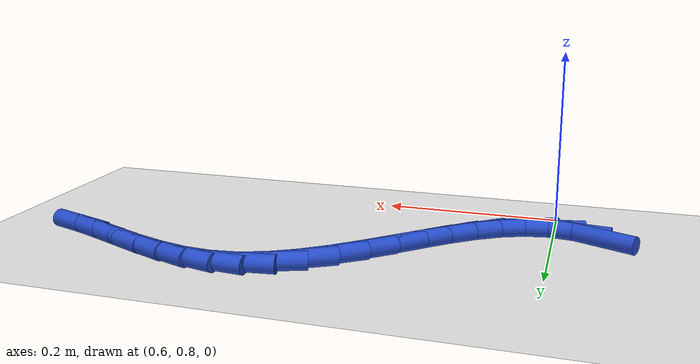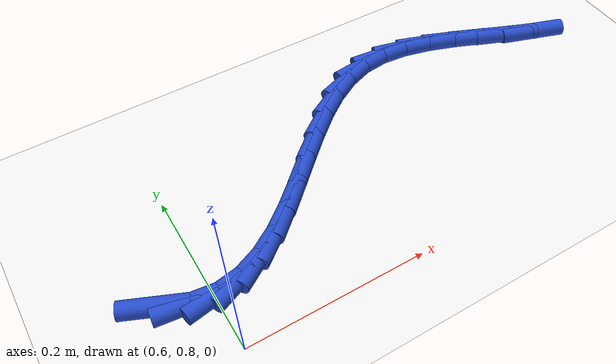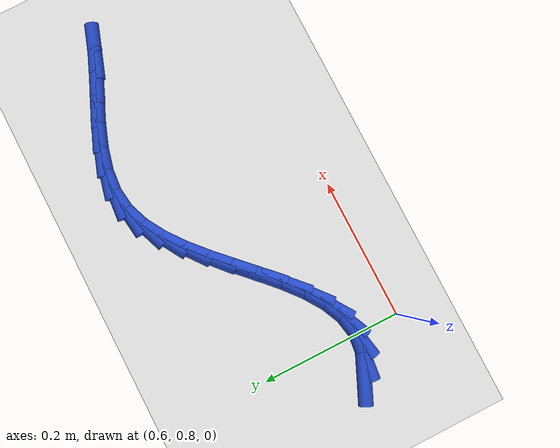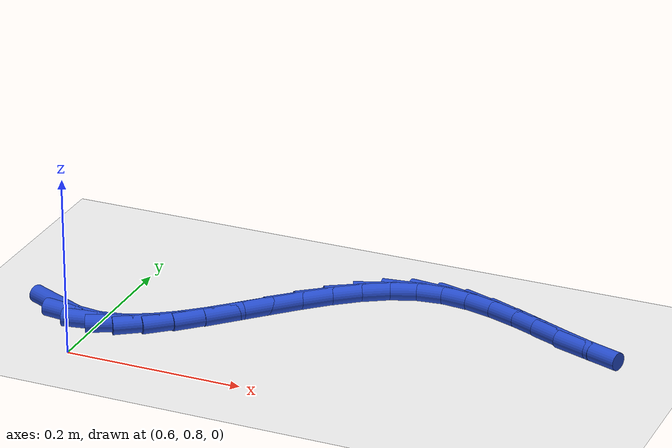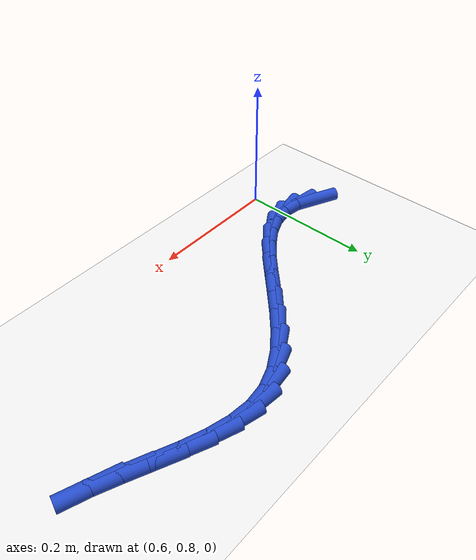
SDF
<sdf version="1.6">
 <world name="default">
  <model name="ground_plane">
   <static>1</static>
   <link name="link">
    <collision name="collision">
     <geometry><plane><normal>0 0 1</normal><size>100 100</size></plane></geometry>
     <surface><friction><ode><mu>100</mu><mu2>50</mu2></ode></friction></surface>
    </collision>
    <visual name="visual">
     <cast_shadows>0</cast_shadows>
     <geometry><plane><normal>0 0 1</normal><size>100 100</size></plane></geometry>
     <material>
      <script><uri>file://media/materials/scripts/gazebo.material</uri><name>Gazebo/WhiteGlow</name></script>
     </material>
    </visual>
   </link>
  </model>
  <model name="line">
   <link name="link_38">
    <pose>0.5495983134943707 0.8786674768305704 0.01 0 1.57 -0.4259680809941621</pose>
    <collision name="collision">
     <geometry><cylinder><radius>0.01</radius><length>0.08</length></cylinder></geometry>
    </collision>
    <visual name="visual">
     <material>
      <script><name>Gazebo/Blue</name><uri>file://media/materials/scripts/gazebo.material</uri></script>
     </material>
     <geometry><cylinder><radius>0.01</radius><length>0.08</length></cylinder></geometry>
    </visual>
   </link>
   <link name="link_39">
    <pose>0.5776242139775235 0.865950723406403 0.01 0 1.57 -0.12190410586019118</pose>
    <collision name="collision">
     <geometry><cylinder><radius>0.01</radius><length>0.08</length></cylinder></geometry>
    </collision>
    <visual name="visual">
     <material>
      <script><name>Gazebo/Blue</name><uri>file://media/materials/scripts/gazebo.material</uri></script>
     </material>
     <geometry><cylinder><radius>0.01</radius><length>0.08</length></cylinder></geometry>
    </visual>
   </link>
   <link name="link_40">
    <pose>0.6048347802592525 0.8626171141139822 0.01 0 1.57 0.1835484129497003</pose>
    <collision name="collision">
     <geometry><cylinder><radius>0.01</radius><length>0.08</length></cylinder></geometry>
    </collision>
    <visual name="visual">
     <material>
      <script><name>Gazebo/Blue</name><uri>file://media/materials/scripts/gazebo.material</uri></script>
     </material>
     <geometry><cylinder><radius>0.01</radius><length>0.08</length></cylinder></geometry>
    </visual>
   </link>
   <link name="link_41">
    <pose>0.6313393229254487 0.8675373597483966 0.01 0 1.57 0.425834711415626</pose>
    <collision name="collision">
     <geometry><cylinder><radius>0.01</radius><length>0.08</length></cylinder></geometry>
    </collision>
    <visual name="visual">
     <material>
      <script><name>Gazebo/Blue</name><uri>file://media/materials/scripts/gazebo.material</uri></script>
     </material>
     <geometry><cylinder><radius>0.01</radius><length>0.08</length></cylinder></geometry>
    </visual>
   </link>
   <link name="link_42">
    <pose>0.657302002931045 0.8793137515042155 0.01 0 1.57 0.5928084336766334</pose>
    <collision name="collision">
     <geometry><cylinder><radius>0.01</radius><length>0.08</length></cylinder></geometry>
    </collision>
    <visual name="visual">
     <material>
      <script><name>Gazebo/Blue</name><uri>file://media/materials/scripts/gazebo.material</uri></script>
     </material>
     <geometry><cylinder><radius>0.01</radius><length>0.08</length></cylinder></geometry>
    </visual>
   </link>
   <link name="link_43">
    <pose>0.6828869812309747 0.896548580576009 0.01 0 1.57 0.6982795642031482</pose>
    <collision name="collision">
     <geometry><cylinder><radius>0.01</radius><length>0.08</length></cylinder></geometry>
    </collision>
    <visual name="visual">
     <material>
      <script><name>Gazebo/Blue</name><uri>file://media/materials/scripts/gazebo.material</uri></script>
     </material>
     <geometry><cylinder><radius>0.01</radius><length>0.08</length></cylinder></geometry>
    </visual>
   </link>
   <link name="link_44">
    <pose>0.7082584187801705 0.9178441381583459 0.01 0 1.57 0.7577375476258514</pose>
    <collision name="collision">
     <geometry><cylinder><radius>0.01</radius><length>0.08</length></cylinder></geometry>
    </collision>
    <visual name="visual">
     <material>
      <script><name>Gazebo/Blue</name><uri>file://media/materials/scripts/gazebo.material</uri></script>
     </material>
     <geometry><cylinder><radius>0.01</radius><length>0.08</length></cylinder></geometry>
    </visual>
   </link>
   <link name="link_45">
    <pose>0.7335804765335658 0.9418027154457969 0.01 0 1.57 0.781194720545762</pose>
    <collision name="collision">
     <geometry><cylinder><radius>0.01</radius><length>0.08</length></cylinder></geometry>
    </collision>
    <visual name="visual">
     <material>
      <script><name>Gazebo/Blue</name><uri>file://media/materials/scripts/gazebo.material</uri></script>
     </material>
     <geometry><cylinder><radius>0.01</radius><length>0.08</length></cylinder></geometry>
    </visual>
   </link>
   <link name="link_46">
    <pose>0.7590173154460937 0.967026603632931 0.01 0 1.57 0.7731113526060213</pose>
    <collision name="collision">
     <geometry><cylinder><radius>0.01</radius><length>0.08</length></cylinder></geometry>
    </collision>
    <visual name="visual">
     <material>
      <script><name>Gazebo/Blue</name><uri>file://media/materials/scripts/gazebo.material</uri></script>
     </material>
     <geometry><cylinder><radius>0.01</radius><length>0.08</length></cylinder></geometry>
    </visual>
   </link>
   <link name="link_47">
    <pose>0.7847330964726874 0.9921180939143182 0.01 0 1.57 0.7332033256073862</pose>
    <collision name="collision">
     <geometry><cylinder><radius>0.01</radius><length>0.08</length></cylinder></geometry>
    </collision>
    <visual name="visual">
     <material>
      <script><name>Gazebo/Blue</name><uri>file://media/materials/scripts/gazebo.material</uri></script>
     </material>
     <geometry><cylinder><radius>0.01</radius><length>0.08</length></cylinder></geometry>
    </visual>
   </link>
   <link name="link_48">
    <pose>0.8108919805682797 1.015679477484528 0.01 0 1.57 0.6567328043990429</pose>
    <collision name="collision">
     <geometry><cylinder><radius>0.01</radius><length>0.08</length></cylinder></geometry>
    </collision>
    <visual name="visual">
     <material>
      <script><name>Gazebo/Blue</name><uri>file://media/materials/scripts/gazebo.material</uri></script>
     </material>
     <geometry><cylinder><radius>0.01</radius><length>0.08</length></cylinder></geometry>
    </visual>
   </link>
   <link name="link_49">
    <pose>0.837658128687804 1.0363130455381302 0.01 0 1.57 0.5346723412015636</pose>
    <collision name="collision">
     <geometry><cylinder><radius>0.01</radius><length>0.08</length></cylinder></geometry>
    </collision>
    <visual name="visual">
     <material>
      <script><name>Gazebo/Blue</name><uri>file://media/materials/scripts/gazebo.material</uri></script>
     </material>
     <geometry><cylinder><radius>0.01</radius><length>0.08</length></cylinder></geometry>
    </visual>
   </link>
   <link name="link_50">
    <pose>0.8651957017861931 1.0526210892696946 0.01 0 1.57 0.35591565333533226</pose>
    <collision name="collision">
     <geometry><cylinder><radius>0.01</radius><length>0.08</length></cylinder></geometry>
    </collision>
    <visual name="visual">
     <material>
      <script><name>Gazebo/Blue</name><uri>file://media/materials/scripts/gazebo.material</uri></script>
     </material>
     <geometry><cylinder><radius>0.01</radius><length>0.08</length></cylinder></geometry>
    </visual>
   </link>
   <link name="link_51">
    <pose>0.8936688608183803 1.0632058998737905 0.01 0 1.57 0.12244499309112532</pose>
    <collision name="collision">
     <geometry><cylinder><radius>0.01</radius><length>0.08</length></cylinder></geometry>
    </collision>
    <visual name="visual">
     <material>
      <script><name>Gazebo/Blue</name><uri>file://media/materials/scripts/gazebo.material</uri></script>
     </material>
     <geometry><cylinder><radius>0.01</radius><length>0.08</length></cylinder></geometry>
    </visual>
   </link>
   <link name="link_52">
    <pose>0.9232162190874177 1.066842015967054 0.01 0 1.57 -0.09243175683574542</pose>
    <collision name="collision">
     <geometry><cylinder><radius>0.01</radius><length>0.08</length></cylinder></geometry>
    </collision>
    <visual name="visual">
     <material>
      <script><name>Gazebo/Blue</name><uri>file://media/materials/scripts/gazebo.material</uri></script>
     </material>
     <geometry><cylinder><radius>0.01</radius><length>0.08</length></cylinder></geometry>
    </visual>
   </link>
   <link name="link_53">
    <pose>0.9537227322076788 1.0640141874672229 0.01 0 1.57 -0.2457882107280763</pose>
    <collision name="collision">
     <geometry><cylinder><radius>0.01</radius><length>0.08</length></cylinder></geometry>
    </collision>
    <visual name="visual">
     <material>
      <script><name>Gazebo/Blue</name><uri>file://media/materials/scripts/gazebo.material</uri></script>
     </material>
     <geometry><cylinder><radius>0.01</radius><length>0.08</length></cylinder></geometry>
    </visual>
   </link>
   <link name="link_54">
    <pose>0.9849281784415743 1.0561859792819512 0.01 0 1.57 -0.34449792646018007</pose>
    <collision name="collision">
     <geometry><cylinder><radius>0.01</radius><length>0.08</length></cylinder></geometry>
    </collision>
    <visual name="visual">
     <material>
      <script><name>Gazebo/Blue</name><uri>file://media/materials/scripts/gazebo.material</uri></script>
     </material>
     <geometry><cylinder><radius>0.01</radius><length>0.08</length></cylinder></geometry>
    </visual>
   </link>
   <link name="link_55">
    <pose>1.0165706256846394 1.0448324879573623 0.01 0 1.57 -0.39870474145118806</pose>
    <collision name="collision">
     <geometry><cylinder><radius>0.01</radius><length>0.08</length></cylinder></geometry>
    </collision>
    <visual name="visual">
     <material>
      <script><name>Gazebo/Blue</name><uri>file://media/materials/scripts/gazebo.material</uri></script>
     </material>
     <geometry><cylinder><radius>0.01</radius><length>0.08</length></cylinder></geometry>
    </visual>
   </link>
   <link name="link_56">
    <pose>1.0483881418324101 1.0314288100395772 0.01 0 1.57 -0.4149630537967998</pose>
    <collision name="collision">
     <geometry><cylinder><radius>0.01</radius><length>0.08</length></cylinder></geometry>
    </collision>
    <visual name="visual">
     <material>
      <script><name>Gazebo/Blue</name><uri>file://media/materials/scripts/gazebo.material</uri></script>
     </material>
     <geometry><cylinder><radius>0.01</radius><length>0.08</length></cylinder></geometry>
    </visual>
   </link>
   <link name="link_57">
    <pose>1.0801187947804214 1.0174500420747188 0.01 0 1.57 -0.39487223125939164</pose>
    <collision name="collision">
     <geometry><cylinder><radius>0.01</radius><length>0.08</length></cylinder></geometry>
    </collision>
    <visual name="visual">
     <material>
      <script><name>Gazebo/Blue</name><uri>file://media/materials/scripts/gazebo.material</uri></script>
     </material>
     <geometry><cylinder><radius>0.01</radius><length>0.08</length></cylinder></geometry>
    </visual>
   </link>
   <link name="link_58">
    <pose>1.1115006524242088 1.004371280608908 0.01 0 1.57 -0.3347558724253994</pose>
    <collision name="collision">
     <geometry><cylinder><radius>0.01</radius><length>0.08</length></cylinder></geometry>
    </collision>
    <visual name="visual">
     <material>
      <script><name>Gazebo/Blue</name><uri>file://media/materials/scripts/gazebo.material</uri></script>
     </material>
     <geometry><cylinder><radius>0.01</radius><length>0.08</length></cylinder></geometry>
    </visual>
   </link>
  </model>
 </world>
</sdf>
